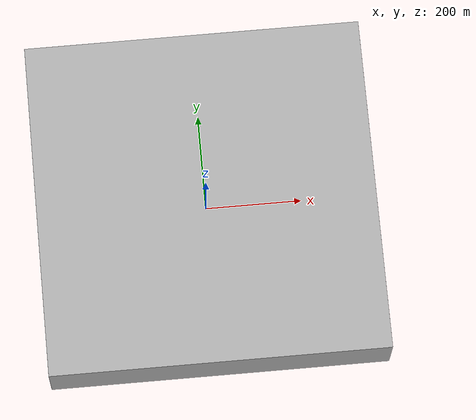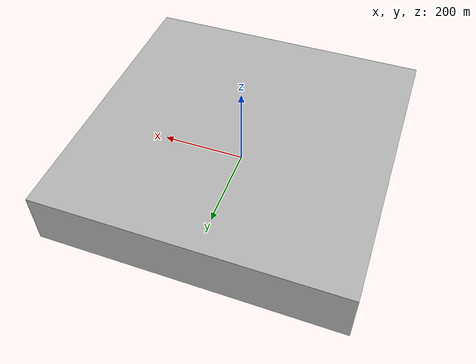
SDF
<sdf version="1.4">
 <world name="compact_underwater_terrain">
  <include><uri>model://sun</uri></include>
  <model name="compact_ocean_box">
   <static>true</static>
   <link name="link">
    <visual name="ground">
     <cast_shadows>false</cast_shadows>
     <pose>0 0 -25.2 0 0 0</pose>
     <geometry><box><size>700 700 .1</size></box></geometry>
     <material>
      <script>
       <uri>file://Media/materials/scripts/sand.material</uri>
       <name>UUVSimulator/SandAndStones</name>
      </script>
     </material>
    </visual>
    <collision name="ground">
     <pose>0 0 -25 0 0 0</pose>
     <geometry><box><size>700 700 .1</size></box></geometry>
    </collision>
    <visual name="surface">
     <cast_shadows>false</cast_shadows>
     <pose>0 0 100 0 0 0</pose>
     <geometry><box><size>700 700 .1</size></box></geometry>
     <material>
      <script>
       <uri>file://Media/materials/scripts/water.material</uri>
       <name>UUVSimulator/StaticDeepWater</name>
      </script>
     </material>
    </visual>
    <visual name="main_water_body">
     <cast_shadows>false</cast_shadows>
     <pose>0 0 35 0 0 0</pose>
     <geometry><box><size>700 700 130</size></box></geometry>
     <material>
      <script><uri>file://Media/materials/scripts/water.material</uri><name>UUVSimulator/StaticWater</name></script>
     </material>
    </visual>
    <visual name="north">
     <cast_shadows>false</cast_shadows>
     <pose>350 0 35 0 0 0</pose>
     <geometry><box><size>.1 700 130</size></box></geometry>
     <material>
      <script><uri>file://Media/materials/scripts/water.material</uri><name>UUVSimulator/SeaWall</name></script>
     </material>
    </visual>
    <visual name="south">
     <cast_shadows>false</cast_shadows>
     <pose>-350 0 35 0 0 0</pose>
     <geometry><box><size>.1 700 130</size></box></geometry>
     <material>
      <script><uri>file://Media/materials/scripts/water.material</uri><name>UUVSimulator/SeaWall</name></script>
     </material>
    </visual>
    <visual name="east">
     <cast_shadows>false</cast_shadows>
     <pose>0 -350 35 0 0 0</pose>
     <geometry><box><size>700 .1 130</size></box></geometry>
     <material>
      <script><uri>file://Media/materials/scripts/water.material</uri><name>UUVSimulator/SeaWall</name></script>
     </material>
    </visual>
    <visual name="west">
     <cast_shadows>false</cast_shadows>
     <pose>0 350 35 0 0 0</pose>
     <geometry><box><size>700 .1 130</size></box></geometry>
     <material>
      <script><uri>file://Media/materials/scripts/water.material</uri><name>UUVSimulator/SeaWall</name></script>
     </material>
    </visual>
   </link>
  </model>
  <model name="rect_block_1">
   <static>true</static>
   <pose>-70  -40 -20 0 0 0</pose>
   <link name="link">
    <collision name="collision"><geometry><box><size>30 0.1 8</size></box></geometry></collision>
    <visual name="visual">
     <geometry><box><size>30 0.1 8</size></box></geometry>
     <material><ambient>0.8 0.2 0.2 1</ambient><diffuse>0.8 0.2 0.2 1</diffuse></material>
    </visual>
   </link>
  </model>
  <model name="rect_block_1_side_left">
   <static>true</static>
   <pose>-85 -40 -20 0 0 0</pose>
   <link name="link">
    <collision name="collision"><geometry><box><size>0.1 25 8</size></box></geometry></collision>
    <visual name="visual">
     <geometry><box><size>0.1 25 8</size></box></geometry>
     <material><ambient>0.8 0.2 0.2 1</ambient><diffuse>0.8 0.2 0.2 1</diffuse></material>
    </visual>
   </link>
  </model>
  <model name="rect_block_1_side_right">
   <static>true</static>
   <pose>-55 -40 -20 0 0 0</pose>
   <link name="link">
    <collision name="collision"><geometry><box><size>0.1 25 8</size></box></geometry></collision>
    <visual name="visual">
     <geometry><box><size>0.1 25 8</size></box></geometry>
     <material><ambient>0.8 0.2 0.2 1</ambient><diffuse>0.8 0.2 0.2 1</diffuse></material>
    </visual>
   </link>
  </model>
  <model name="rect_block_2">
   <static>true</static>
   <pose>65  55 -10 0 0 0</pose>
   <link name="link">
    <collision name="collision"><geometry><box><size>30 0.1 12</size></box></geometry></collision>
    <visual name="visual">
     <geometry><box><size>30 0.1 12</size></box></geometry>
     <material><ambient>0.2 0.6 0.9 1</ambient><diffuse>0.2 0.6 0.9 1</diffuse></material>
    </visual>
   </link>
  </model>
  <model name="rect_block_3">
   <static>true</static>
   <pose>-20  80 -18 0 0 0</pose>
   <link name="link">
    <collision name="collision"><geometry><box><size>30 0.1 12</size></box></geometry></collision>
    <visual name="visual">
     <geometry><box><size>30 0.1 12</size></box></geometry>
     <material><ambient>0.3 0.8 0.3 1</ambient><diffuse>0.3 0.8 0.3 1</diffuse></material>
    </visual>
   </link>
  </model>
  <model name="rect_block_4">
   <static>true</static>
   <pose>15 15 -12 0 0 0</pose>
   <link name="link">
    <collision name="collision"><geometry><box><size>30 0.1 12</size></box></geometry></collision>
    <visual name="visual">
     <geometry><box><size>30 0.1 12</size></box></geometry>
     <material><ambient>0.9 0.8 0.2 1</ambient><diffuse>0.9 0.8 0.2 1</diffuse></material>
    </visual>
   </link>
  </model>
  <plugin name="underwater_current_plugin" filename="libuuv_underwater_current_ros_plugin.so">
   <namespace>hydrodynamics</namespace>
   <constant_current>
    <topic>current_velocity</topic>
    <velocity><mean>0</mean><min>0</min><max>5</max><mu>0.0</mu><noiseAmp>0.0</noiseAmp></velocity>
    <horizontal_angle>
     <mean>0</mean>
     <min>-3.141592653589793238</min>
     <max>3.141592653589793238</max>
     <mu>0.0</mu>
     <noiseAmp>0.0</noiseAmp>
    </horizontal_angle>
    <vertical_angle>
     <mean>0</mean>
     <min>-3.141592653589793238</min>
     <max>3.141592653589793238</max>
     <mu>0.0</mu>
     <noiseAmp>0.0</noiseAmp>
    </vertical_angle>
   </constant_current>
  </plugin>
  <plugin name="sc_interface" filename="libuuv_sc_ros_interface_plugin.so"/>
 </world>
</sdf>
